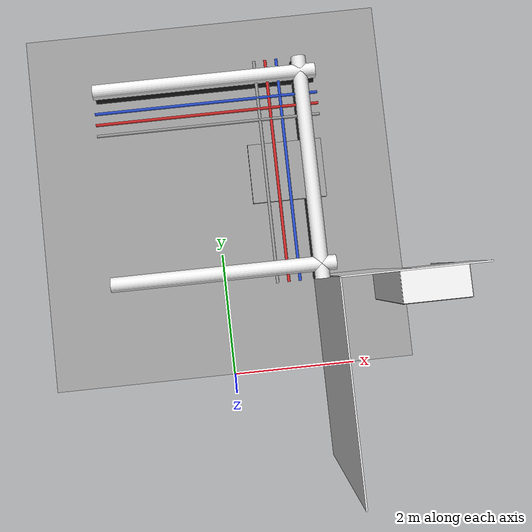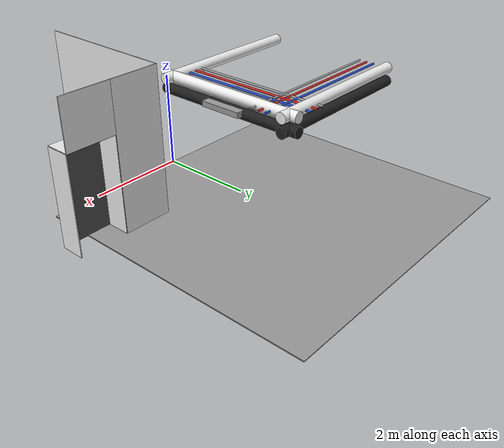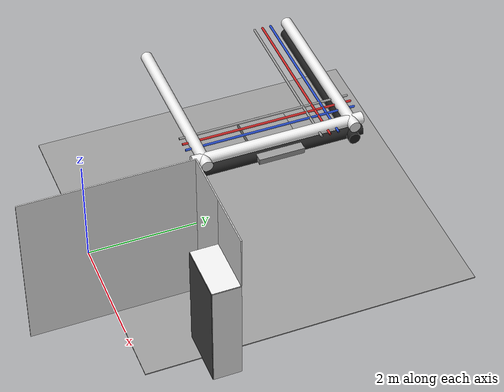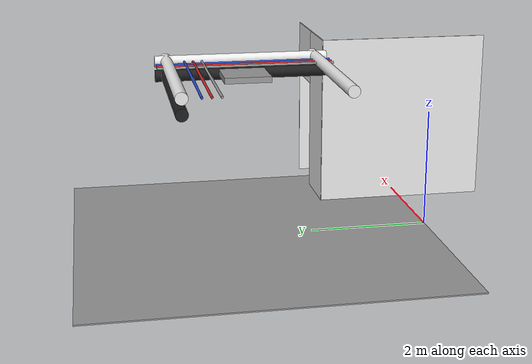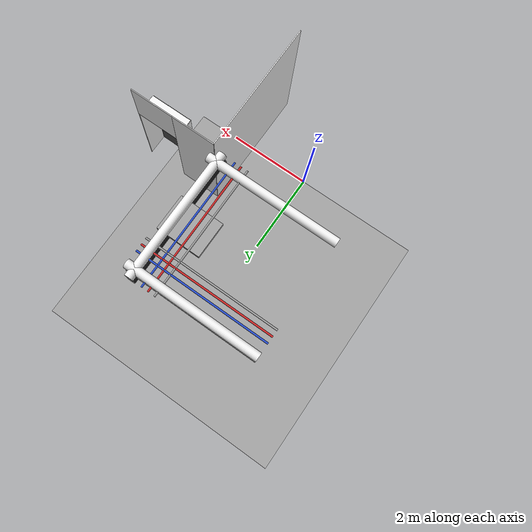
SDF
<sdf version="1.6">
 <world name="default">
  <model name="wall_right_0_0_0_0">
   <static>1</static>
   <pose>1.5 0.0 1.5 0.0 0.0 1.57</pose>
   <link name="link">
    <collision name="collision"><geometry><box><size>3.0 0.02 3.0</size></box></geometry></collision>
    <visual name="visual">
     <material>
      <script><name>Gazebo/White</name><uri>file://media/materials/scripts/gazebo.material</uri></script>
     </material>
     <geometry><box><size>3.0 0.02 3.0</size></box></geometry>
    </visual>
   </link>
  </model>
  <model name="ceiling_1_0_1_1_2">
   <pose>1.0 3.0 2.55 0.0 0.0 1.57</pose>
   <link name="link_1">
    <visual name="visual">
     <geometry><box><size>0.8 1 0.1</size></box></geometry>
     <material>
      <script><uri>file://media/materials/scripts/gazebo.material</uri><name>Gazebo/Grey</name></script>
     </material>
    </visual>
    <collision name="collision"><geometry><box><size>0.8 1 0.1</size></box></geometry></collision>
   </link>
   <static>1</static>
  </model>
  <model name="white_pipe_right_0_1_0_2">
   <static>1</static>
   <pose>0.0 3.0 2.76 0.0 0.0 0.0</pose>
   <link name="link_0">
    <visual name="visual">
     <pose>1.3 0 0 1.57 0 0</pose>
     <geometry><cylinder><radius>0.1</radius><length>3.0</length></cylinder></geometry>
     <material>
      <script><uri>file://media/materials/scripts/gazebo.material</uri><name>Gazebo/White</name></script>
     </material>
    </visual>
    <collision name="collision">
     <pose>1.3 0 0 1.57 0 0</pose>
     <geometry><cylinder><radius>0.1</radius><length>3.0</length></cylinder></geometry>
    </collision>
   </link>
  </model>
  <model name="black_pipe_right_0_1_0_2">
   <static>1</static>
   <pose>0.0 3.0 2.76 0.0 0.0 0.0</pose>
   <link name="link_0">
    <visual name="visual">
     <pose>1.3 0 -0.25 1.57 0 0</pose>
     <geometry><cylinder><radius>0.1</radius><length>3.0</length></cylinder></geometry>
     <material>
      <script><uri>file://media/materials/scripts/gazebo.material</uri><name>Gazebo/Black</name></script>
     </material>
    </visual>
    <collision name="collision">
     <pose>1.3 0 -0.25 1.57 0 0</pose>
     <geometry><cylinder><radius>0.1</radius><length>3.0</length></cylinder></geometry>
    </collision>
   </link>
  </model>
  <model name="grey_pipe_right_0_1_0_2">
   <static>1</static>
   <pose>0.0 3.0 2.76 0.0 0.0 0.0</pose>
   <link name="link_0">
    <visual name="visual">
     <pose>0.7 0 0 1.57 0 0</pose>
     <geometry><cylinder><radius>0.02</radius><length>3.0</length></cylinder></geometry>
     <material>
      <script><uri>file://media/materials/scripts/gazebo.material</uri><name>Gazebo/Grey</name></script>
     </material>
    </visual>
    <collision name="collision">
     <pose>0.7 0 0 1.57 0 0</pose>
     <geometry><cylinder><radius>0.02</radius><length>3.0</length></cylinder></geometry>
    </collision>
   </link>
  </model>
  <model name="red_pipe_right_0_1_0_2">
   <static>1</static>
   <pose>0.0 3.0 2.76 0.0 0.0 0.0</pose>
   <link name="link_0">
    <visual name="visual">
     <pose>0.85 0 0 1.57 0 0</pose>
     <geometry><cylinder><radius>0.02</radius><length>3.0</length></cylinder></geometry>
     <material>
      <script><uri>file://media/materials/scripts/gazebo.material</uri><name>Gazebo/Red</name></script>
     </material>
    </visual>
    <collision name="collision">
     <pose>0.85 0 0 1.57 0 0</pose>
     <geometry><cylinder><radius>0.02</radius><length>3.0</length></cylinder></geometry>
    </collision>
   </link>
  </model>
  <model name="blue_pipe_right_0_1_0_2">
   <static>1</static>
   <pose>0.0 3.0 2.76 0.0 0.0 0.0</pose>
   <link name="link_0">
    <visual name="visual">
     <pose>1 0 0 1.57 0 0</pose>
     <geometry><cylinder><radius>0.02</radius><length>3.0</length></cylinder></geometry>
     <material>
      <script><uri>file://media/materials/scripts/gazebo.material</uri><name>Gazebo/Blue</name></script>
     </material>
    </visual>
    <collision name="collision">
     <pose>1 0 0 1.57 0 0</pose>
     <geometry><cylinder><radius>0.02</radius><length>3.0</length></cylinder></geometry>
    </collision>
   </link>
  </model>
  <model name="white_pipe_left_1_0_1_0_2">
   <static>1</static>
   <pose>0.0 3.0 2.76 0.0 0.0 1.57</pose>
   <link name="link_0">
    <visual name="visual">
     <pose>-1.3 0 0 1.57 0 0</pose>
     <geometry><cylinder><radius>0.1</radius><length>3.0</length></cylinder></geometry>
     <material>
      <script><uri>file://media/materials/scripts/gazebo.material</uri><name>Gazebo/White</name></script>
     </material>
    </visual>
    <collision name="collision">
     <pose>-1.3 0 0 1.57 0 0</pose>
     <geometry><cylinder><radius>0.1</radius><length>3.0</length></cylinder></geometry>
    </collision>
   </link>
  </model>
  <model name="white_pipe_right_1_0_1_0_2">
   <static>1</static>
   <pose>0.0 3.0 2.76 0.0 0.0 1.57</pose>
   <link name="link_0">
    <visual name="visual">
     <pose>1.3 0 0 1.57 0 0</pose>
     <geometry><cylinder><radius>0.1</radius><length>3.0</length></cylinder></geometry>
     <material>
      <script><uri>file://media/materials/scripts/gazebo.material</uri><name>Gazebo/White</name></script>
     </material>
    </visual>
    <collision name="collision">
     <pose>1.3 0 0 1.57 0 0</pose>
     <geometry><cylinder><radius>0.1</radius><length>3.0</length></cylinder></geometry>
    </collision>
   </link>
  </model>
  <model name="black_pipe_right_1_0_1_0_2">
   <static>1</static>
   <pose>0.0 3.0 2.76 0.0 0.0 1.57</pose>
   <link name="link_0">
    <visual name="visual">
     <pose>1.3 0 -0.25 1.57 0 0</pose>
     <geometry><cylinder><radius>0.1</radius><length>3.0</length></cylinder></geometry>
     <material>
      <script><uri>file://media/materials/scripts/gazebo.material</uri><name>Gazebo/Black</name></script>
     </material>
    </visual>
    <collision name="collision">
     <pose>1.3 0 -0.25 1.57 0 0</pose>
     <geometry><cylinder><radius>0.1</radius><length>3.0</length></cylinder></geometry>
    </collision>
   </link>
  </model>
  <model name="grey_pipe_right_1_0_1_0_2">
   <static>1</static>
   <pose>0.0 3.0 2.76 0.0 0.0 1.57</pose>
   <link name="link_0">
    <visual name="visual">
     <pose>0.7 0 0 1.57 0 0</pose>
     <geometry><cylinder><radius>0.02</radius><length>3.0</length></cylinder></geometry>
     <material>
      <script><uri>file://media/materials/scripts/gazebo.material</uri><name>Gazebo/Grey</name></script>
     </material>
    </visual>
    <collision name="collision">
     <pose>0.7 0 0 1.57 0 0</pose>
     <geometry><cylinder><radius>0.02</radius><length>3.0</length></cylinder></geometry>
    </collision>
   </link>
  </model>
  <model name="red_pipe_right_1_0_1_0_2">
   <static>1</static>
   <pose>0.0 3.0 2.76 0.0 0.0 1.57</pose>
   <link name="link_0">
    <visual name="visual">
     <pose>0.85 0 0 1.57 0 0</pose>
     <geometry><cylinder><radius>0.02</radius><length>3.0</length></cylinder></geometry>
     <material>
      <script><uri>file://media/materials/scripts/gazebo.material</uri><name>Gazebo/Red</name></script>
     </material>
    </visual>
    <collision name="collision">
     <pose>0.85 0 0 1.57 0 0</pose>
     <geometry><cylinder><radius>0.02</radius><length>3.0</length></cylinder></geometry>
    </collision>
   </link>
  </model>
  <model name="blue_pipe_right_1_0_1_0_2">
   <static>1</static>
   <pose>0.0 3.0 2.76 0.0 0.0 1.57</pose>
   <link name="link_0">
    <visual name="visual">
     <pose>1 0 0 1.57 0 0</pose>
     <geometry><cylinder><radius>0.02</radius><length>3.0</length></cylinder></geometry>
     <material>
      <script><uri>file://media/materials/scripts/gazebo.material</uri><name>Gazebo/Blue</name></script>
     </material>
    </visual>
    <collision name="collision">
     <pose>1 0 0 1.57 0 0</pose>
     <geometry><cylinder><radius>0.02</radius><length>3.0</length></cylinder></geometry>
    </collision>
   </link>
  </model>
  <model name="wall_bottom_0_1_0_2">
   <static>1</static>
   <pose>0.0 3.0 0.0 0.0 0.0 0.0</pose>
   <link name="link">
    <collision name="collision"><geometry><box><size>6.0 6.0 0.02</size></box></geometry></collision>
    <visual name="visual">
     <material>
      <script><name>Gazebo/Grey</name><uri>file://media/materials/scripts/gazebo.material</uri></script>
     </material>
     <geometry><box><size>6.0 6.0 0.02</size></box></geometry>
    </visual>
   </link>
  </model>
  <model name="wall_right_front_right_1_1_0_3">
   <static>1</static>
   <pose>2.0 1.5 1.5 0.0 0.0 0.0</pose>
   <link name="link">
    <collision name="collision"><geometry><box><size>1.0 0.02 3.0</size></box></geometry></collision>
    <visual name="visual">
     <material>
      <script><name>Gazebo/White</name><uri>file://media/materials/scripts/gazebo.material</uri></script>
     </material>
     <geometry><box><size>1.0 0.02 3.0</size></box></geometry>
    </visual>
   </link>
  </model>
  <model name="wall_right_front_up_1_1_0_3">
   <static>1</static>
   <pose>3.0 1.5 2.5 0.0 0.0 0.0</pose>
   <link name="link">
    <collision name="collision"><geometry><box><size>1.0 0.02 1.0</size></box></geometry></collision>
    <visual name="visual">
     <material>
      <script><name>Gazebo/White</name><uri>file://media/materials/scripts/gazebo.material</uri></script>
     </material>
     <geometry><box><size>1.0 0.02 1.0</size></box></geometry>
    </visual>
   </link>
  </model>
  <model name="wall_right_inside_back_1_1_0_3">
   <static>1</static>
   <pose>3.0 1.0 1.0 0.0 0.0 0.0</pose>
   <link name="link">
    <collision name="collision"><geometry><box><size>1 0.02 2</size></box></geometry></collision>
    <visual name="visual">
     <material>
      <script><name>Gazebo/DarkGrey</name><uri>file://media/materials/scripts/gazebo.material</uri></script>
     </material>
     <geometry><box><size>1 0.02 2</size></box></geometry>
    </visual>
   </link>
  </model>
  <model name="wall_right_inside_left_1_1_0_3">
   <static>1</static>
   <pose>3.5 1.25 1.0 0.0 0.0 -1.57</pose>
   <link name="link">
    <collision name="collision"><geometry><box><size>0.5 0.02 2</size></box></geometry></collision>
    <visual name="visual">
     <material>
      <script><name>Gazebo/White</name><uri>file://media/materials/scripts/gazebo.material</uri></script>
     </material>
     <geometry><box><size>0.5 0.02 2</size></box></geometry>
    </visual>
   </link>
  </model>
  <model name="wall_right_inside_right_1_1_0_3">
   <static>1</static>
   <pose>2.5 1.25 1.0 0.0 0.0 -1.57</pose>
   <link name="link">
    <collision name="collision"><geometry><box><size>0.5 0.02 2</size></box></geometry></collision>
    <visual name="visual">
     <material>
      <script><name>Gazebo/White</name><uri>file://media/materials/scripts/gazebo.material</uri></script>
     </material>
     <geometry><box><size>0.5 0.02 2</size></box></geometry>
    </visual>
   </link>
  </model>
  <model name="wall_right_inside_top_1_1_0_3">
   <static>1</static>
   <pose>3.0 1.25 2.0 1.57 0.0 0.0</pose>
   <link name="link">
    <collision name="collision"><geometry><box><size>1 0.02 0.5</size></box></geometry></collision>
    <visual name="visual">
     <material>
      <script><name>Gazebo/White</name><uri>file://media/materials/scripts/gazebo.material</uri></script>
     </material>
     <geometry><box><size>1 0.02 0.5</size></box></geometry>
    </visual>
   </link>
  </model>
 </world>
</sdf>
